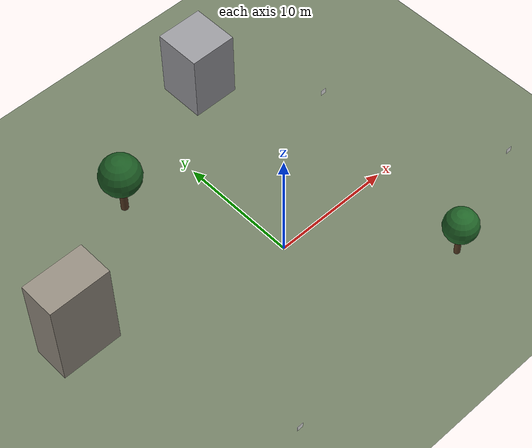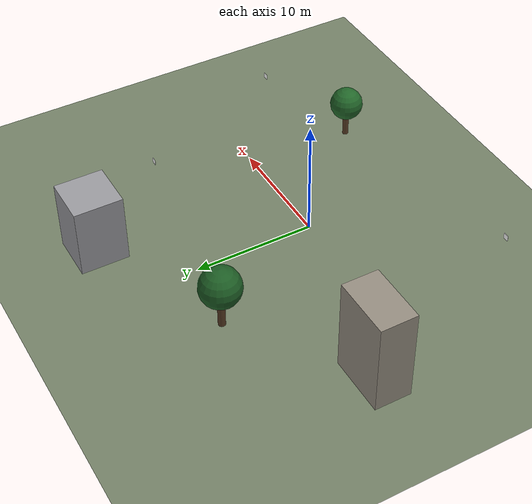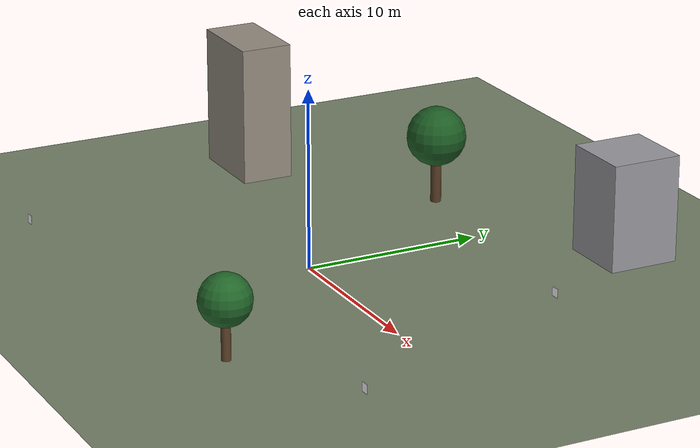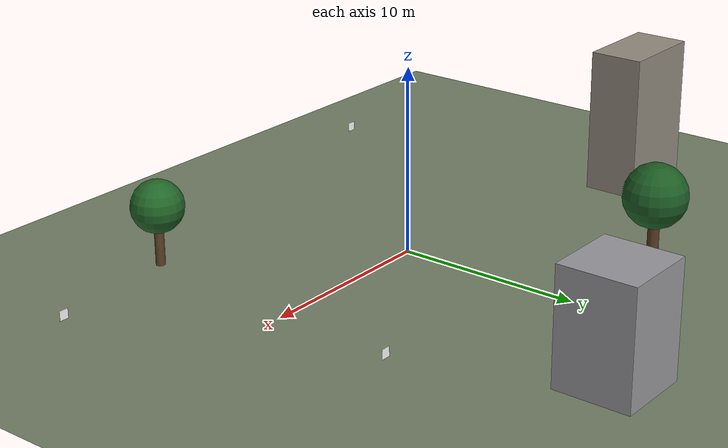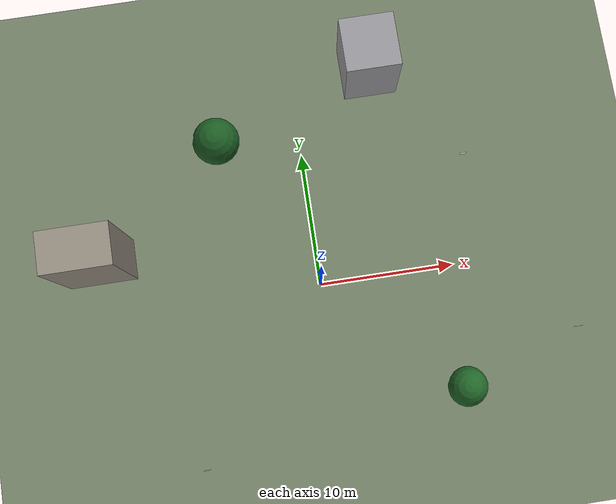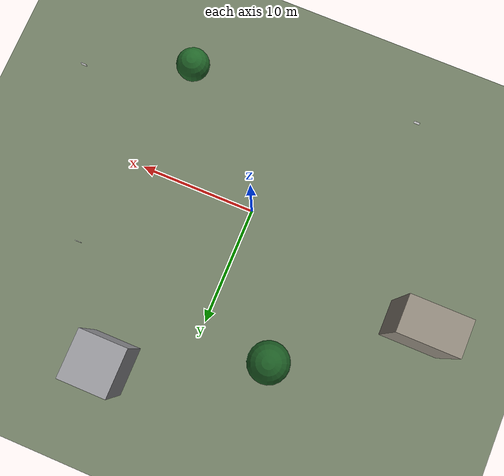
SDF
<?xml version="1.0" encoding="UTF-8"?>
<sdf version="1.9">
  <world name="patrol_world">
    <physics type="ode">
      <max_step_size>0.004</max_step_size>
      <real_time_factor>1.0</real_time_factor>
      <real_time_update_rate>250</real_time_update_rate>
    </physics>
    <gravity>0 0 -9.8</gravity>
    <magnetic_field>6e-06 2.3e-05 -4.2e-05</magnetic_field>
    <atmosphere type="adiabatic"/>
    <scene>
      <grid>false</grid>
      <ambient>0.4 0.4 0.4 1</ambient>
      <background>0.7 0.7 0.7 1</background>
      <shadows>true</shadows>
    </scene>

    <!-- ~40x40 m flat ground plane (primitive). Collision is an infinite plane so the drone always
         has ground; the 40x40 visual bounds the meaningful patrol area (OQ-6). -->
    <model name="ground_plane">
      <static>true</static>
      <link name="link">
        <collision name="collision">
          <geometry>
            <plane>
              <normal>0 0 1</normal>
              <size>1 1</size>
            </plane>
          </geometry>
        </collision>
        <visual name="visual">
          <geometry>
            <plane>
              <normal>0 0 1</normal>
              <size>40 40</size>
            </plane>
          </geometry>
          <material>
            <ambient>0.45 0.5 0.4 1</ambient>
            <diffuse>0.45 0.5 0.4 1</diffuse>
            <specular>0.2 0.2 0.2 1</specular>
          </material>
        </visual>
      </link>
    </model>

    <light name="sunUTC" type="directional">
      <pose>0 0 500 0 -0 0</pose>
      <cast_shadows>true</cast_shadows>
      <intensity>1</intensity>
      <direction>0.001 0.625 -0.78</direction>
      <diffuse>0.904 0.904 0.904 1</diffuse>
      <specular>0.271 0.271 0.271 1</specular>
      <attenuation>
        <range>2000</range>
        <linear>0</linear>
        <constant>1</constant>
        <quadratic>0</quadratic>
      </attenuation>
    </light>

    <!-- Building-like box obstacles (primitives, static), placed clear of the checkpoints and the
         (0,0) takeoff origin so they are geometry to patrol around, not into. -->
    <model name="building_north">
      <static>true</static>
      <pose>6 16 3 0 0 0</pose>
      <link name="link">
        <collision name="collision">
          <geometry><box><size>4 4 6</size></box></geometry>
        </collision>
        <visual name="visual">
          <geometry><box><size>4 4 6</size></box></geometry>
          <material>
            <ambient>0.6 0.6 0.62 1</ambient>
            <diffuse>0.6 0.6 0.62 1</diffuse>
          </material>
        </visual>
      </link>
    </model>

    <model name="building_west">
      <static>true</static>
      <pose>-16 4 4 0 0 0</pose>
      <link name="link">
        <collision name="collision">
          <geometry><box><size>5 3 8</size></box></geometry>
        </collision>
        <visual name="visual">
          <geometry><box><size>5 3 8</size></box></geometry>
          <material>
            <ambient>0.58 0.55 0.5 1</ambient>
            <diffuse>0.58 0.55 0.5 1</diffuse>
          </material>
        </visual>
      </link>
    </model>

    <!-- Tree props: a primitive trunk (cylinder) + canopy (sphere) per tree. Distinct positions and
         sizes; lightweight, no meshes. -->
    <model name="tree_southeast">
      <static>true</static>
      <pose>9 -9 0 0 0 0</pose>
      <link name="link">
        <collision name="trunk_collision">
          <pose>0 0 1.25 0 0 0</pose>
          <geometry><cylinder><radius>0.25</radius><length>2.5</length></cylinder></geometry>
        </collision>
        <visual name="trunk">
          <pose>0 0 1.25 0 0 0</pose>
          <geometry><cylinder><radius>0.25</radius><length>2.5</length></cylinder></geometry>
          <material>
            <ambient>0.36 0.25 0.15 1</ambient>
            <diffuse>0.36 0.25 0.15 1</diffuse>
          </material>
        </visual>
        <visual name="canopy">
          <pose>0 0 3.2 0 0 0</pose>
          <geometry><sphere><radius>1.4</radius></sphere></geometry>
          <material>
            <ambient>0.13 0.4 0.16 1</ambient>
            <diffuse>0.13 0.4 0.16 1</diffuse>
          </material>
        </visual>
      </link>
    </model>

    <model name="tree_northwest">
      <static>true</static>
      <pose>-6 11 0 0 0 0</pose>
      <link name="link">
        <collision name="trunk_collision">
          <pose>0 0 1.5 0 0 0</pose>
          <geometry><cylinder><radius>0.3</radius><length>3.0</length></cylinder></geometry>
        </collision>
        <visual name="trunk">
          <pose>0 0 1.5 0 0 0</pose>
          <geometry><cylinder><radius>0.3</radius><length>3.0</length></cylinder></geometry>
          <material>
            <ambient>0.34 0.23 0.14 1</ambient>
            <diffuse>0.34 0.23 0.14 1</diffuse>
          </material>
        </visual>
        <visual name="canopy">
          <pose>0 0 3.9 0 0 0</pose>
          <geometry><sphere><radius>1.7</radius></sphere></geometry>
          <material>
            <ambient>0.11 0.36 0.14 1</ambient>
            <diffuse>0.11 0.36 0.14 1</diffuse>
          </material>
        </visual>
      </link>
    </model>

    <include>
      <name>checkpoint_cp_north</name>
      <uri>model://apriltag_36h11_0</uri>
      <pose>12 8 1.5 0 0 0</pose>   <!-- x y z roll pitch yaw, world/ENU -->
    </include>
    <include>
      <name>checkpoint_cp_east</name>
      <uri>model://apriltag_36h11_1</uri>
      <pose>18 -6 1.5 0 0 0</pose>   <!-- x y z roll pitch yaw, world/ENU -->
    </include>
    <include>
      <name>checkpoint_cp_south</name>
      <uri>model://apriltag_36h11_2</uri>
      <pose>-10 -12 1.5 0 0 0</pose>   <!-- x y z roll pitch yaw, world/ENU -->
    </include>

    <spherical_coordinates>
      <surface_model>EARTH_WGS84</surface_model>
      <world_frame_orientation>ENU</world_frame_orientation>
      <latitude_deg>47.397971057728974</latitude_deg>
      <longitude_deg>8.546163739800146</longitude_deg>
      <elevation>0</elevation>
    </spherical_coordinates>
  </world>
</sdf>

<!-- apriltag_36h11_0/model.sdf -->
<!-- GENERATED by sim/tools/gen_apriltag_models.py — do not edit by hand. -->
<sdf version="1.9">
  <model name="apriltag_36h11_0">
    <static>true</static>
    <link name="link">
      <visual name="tag">
        <geometry>
          <box>
            <size>0.5 0.02 0.5</size>
          </box>
        </geometry>
        <material>
          <diffuse>1 1 1 1</diffuse>
          <specular>0.1 0.1 0.1 1</specular>
          <pbr>
            <metal>
              <albedo_map>materials/textures/tag36_11_00000.png</albedo_map>
              <metalness>0.0</metalness>
              <roughness>1.0</roughness>
            </metal>
          </pbr>
        </material>
      </visual>
    </link>
  </model>
</sdf>

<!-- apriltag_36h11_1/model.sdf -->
<!-- GENERATED by sim/tools/gen_apriltag_models.py — do not edit by hand. -->
<sdf version="1.9">
  <model name="apriltag_36h11_1">
    <static>true</static>
    <link name="link">
      <visual name="tag">
        <geometry>
          <box>
            <size>0.5 0.02 0.5</size>
          </box>
        </geometry>
        <material>
          <diffuse>1 1 1 1</diffuse>
          <specular>0.1 0.1 0.1 1</specular>
          <pbr>
            <metal>
              <albedo_map>materials/textures/tag36_11_00001.png</albedo_map>
              <metalness>0.0</metalness>
              <roughness>1.0</roughness>
            </metal>
          </pbr>
        </material>
      </visual>
    </link>
  </model>
</sdf>

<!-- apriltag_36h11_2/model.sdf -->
<!-- GENERATED by sim/tools/gen_apriltag_models.py — do not edit by hand. -->
<sdf version="1.9">
  <model name="apriltag_36h11_2">
    <static>true</static>
    <link name="link">
      <visual name="tag">
        <geometry>
          <box>
            <size>0.5 0.02 0.5</size>
          </box>
        </geometry>
        <material>
          <diffuse>1 1 1 1</diffuse>
          <specular>0.1 0.1 0.1 1</specular>
          <pbr>
            <metal>
              <albedo_map>materials/textures/tag36_11_00002.png</albedo_map>
              <metalness>0.0</metalness>
              <roughness>1.0</roughness>
            </metal>
          </pbr>
        </material>
      </visual>
    </link>
  </model>
</sdf>
